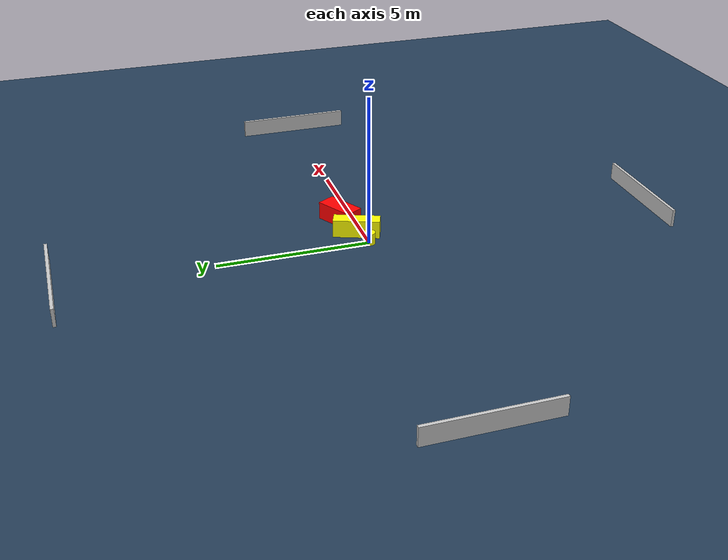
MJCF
<?xml version="1.0" ?>
<mujoco model="generated_environment">
  <option timestep="0.01" integrator="RK4" cone="elliptic"/>
  <default>
    <geom density="1"/>
  </default>
  <asset>
    <texture builtin="gradient" height="3072" name="skybox" rgb1="0.3 0.5 0.7" rgb2="0 0 0" type="skybox" width="512"/>
    <texture builtin="checker" height="300" name="groundplane" rgb1="0.2 0.3 0.4" rgb2="0.1 0.2 0.3" type="2d" width="300"/>
    <material name="groundplane" reflectance="0.2" texrepeat="5 5" texture="groundplane"/>
  </asset>
  <worldbody>
    <light dir="0 0 -1" directional="true" pos="0 0 1.5"/>
    <geom condim="3" friction="0.5 0.005 0.001" material="groundplane" name="floor" pos="0 0 0" size="0 0 0.05" type="plane"/>
    <body name="walls">
      <geom name="wall_1" condim="4" pos="-10.0 0.0 0.3" rgba="0.800000011920929 0.800000011920929 0.800000011920929 1.0" size="0.05 2.0 0.3" type="box"/>
      <geom name="wall_2" condim="4" pos="10.0 0.0 0.3" rgba="0.800000011920929 0.800000011920929 0.800000011920929 1.0" size="0.05 2.0 0.3" type="box"/>
      <geom name="wall_3" condim="4" pos="0.0 -10.0 0.3" rgba="0.800000011920929 0.800000011920929 0.800000011920929 1.0" size="2.0 0.05 0.3" type="box"/>
      <geom name="wall_4" condim="4" pos="0.0 10.0 0.3" rgba="0.800000011920929 0.800000011920929 0.800000011920929 1.0" size="2.0 0.05 0.3" type="box"/>
    </body>
    <body name="robot">
      <joint name="joint_x" type="slide" pos="0 0 0" axis="1 0 0"/>
      <joint name="joint_y" type="slide" pos="0 0 0" axis="0 1 0"/>
      <geom name="robot" type="cylinder" pos="0.0 0.0 0.2" size="0.2 0.2 0.0" mass="5.0" friction="1.0 0.005 0.0001" condim="4" rgba="1.0 1.0 0.0 1.0"/>
    </body>
    <body name="obstacle_1_movable">
      <geom name="obstacle_1_movable" condim="4" pos="0.6860116667778986 0.208039729587116 0.3" euler="0 0 338.6912377993926" friction="0.0 0.005 0.001" rgba="1.0 1.0 0.0 1.0" size="0.23361238519087085 0.7686582527758414 0.3" type="box" mass="0.1"/>
      <joint type="free"/>
    </body>
    <body name="obstacle_2_static">
      <geom name="obstacle_2_static" condim="4" pos="1.7597935124328254 0.46399401151591146 0.3" euler="0 0 209.7118706972266" friction="0.0 0.005 0.001" rgba="1.0 0.0 0.0 1.0" size="0.6703189798895659 0.31542724628387964 0.3" type="box"/>
    </body>
  </worldbody>
  <actuator>
    <motor name="actuator_x" joint="joint_x" gear="1" ctrlrange="-1 1"/>
    <motor name="actuator_y" joint="joint_y" gear="1" ctrlrange="-1 1"/>
  </actuator>
</mujoco>
